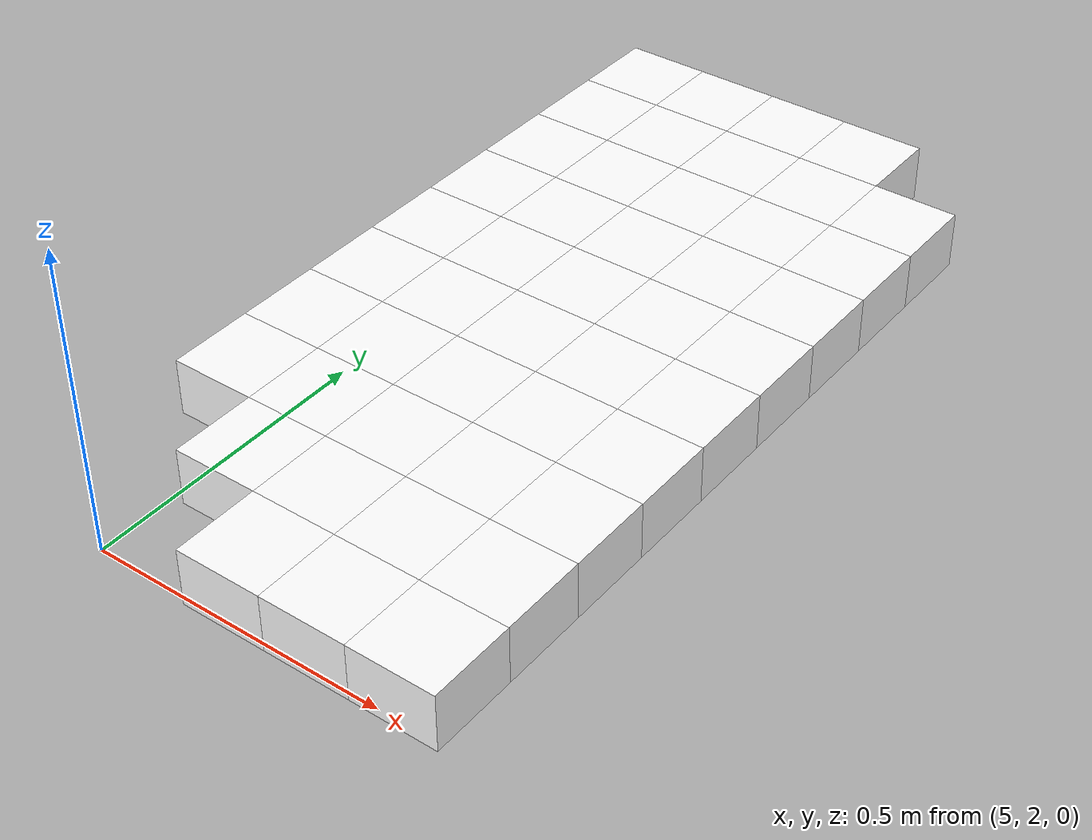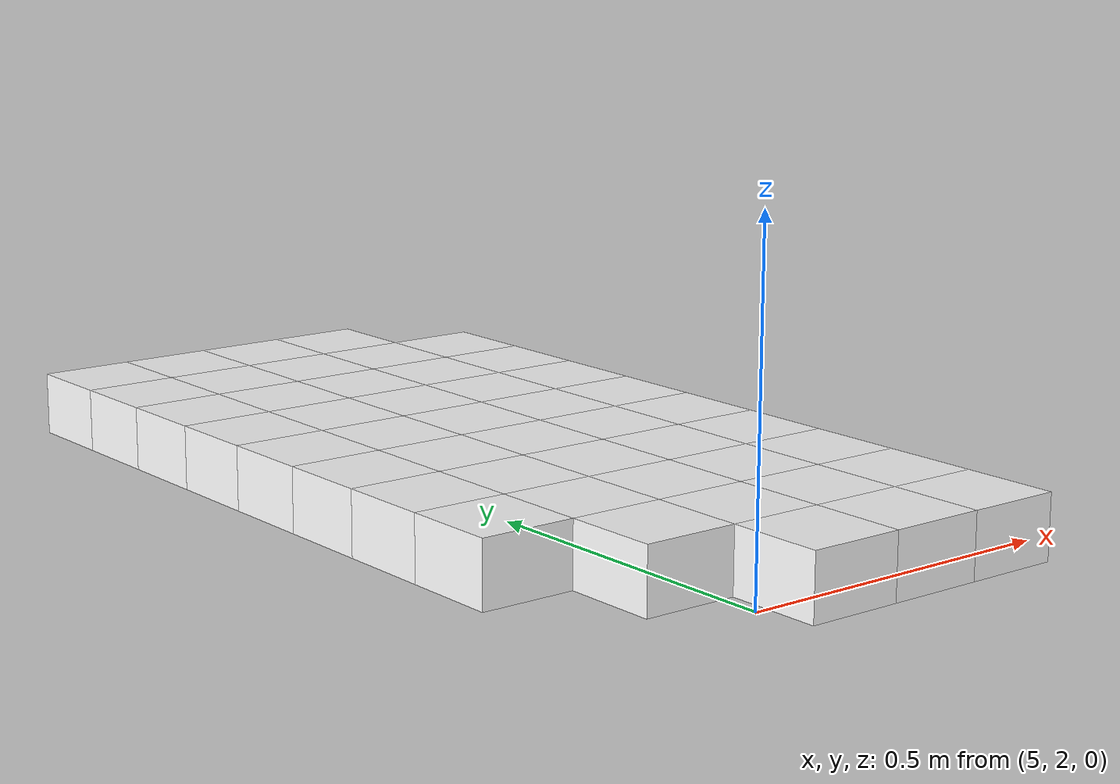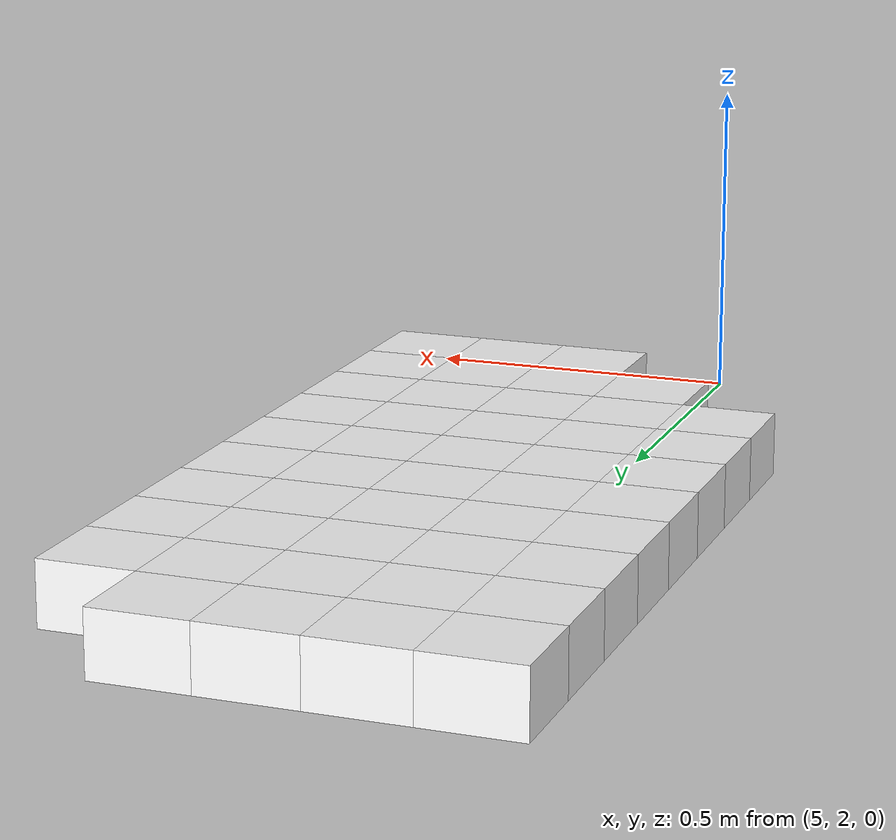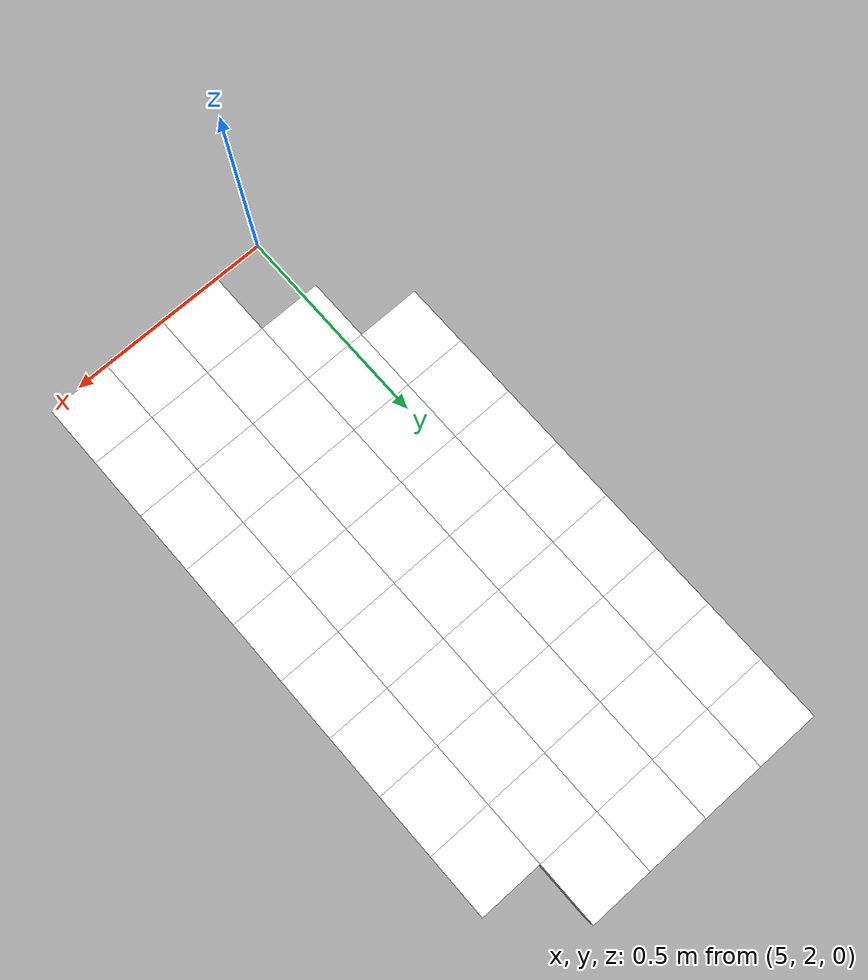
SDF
<sdf version="1.7">
 <world name="default">
  <include><uri>model://sun</uri></include>
  <model name="static_environment">
   <static>true</static>
   <link name="region_1008">
    <pose>5.200000000000003 2.0999999999999996 0.0 0.0 0.0 0.0</pose>
    <collision name="region_1008_collision">
     <geometry><box><size>0.15 0.15 0.1</size></box></geometry>
     <surface><friction><ode><mu>1.0</mu><mu2>1.0</mu2></ode></friction></surface>
    </collision>
    <visual name="region_1008_visual">
     <geometry><box><size>0.15 0.15 0.1</size></box></geometry>
     <material><ambient>1.0 1.0 1.0 1.0</ambient><diffuse>1.0 1.0 1.0 1.0</diffuse></material>
    </visual>
   </link>
   <link name="region_1009">
    <pose>5.350000000000003 2.0999999999999996 0.0 0.0 0.0 0.0</pose>
    <collision name="region_1009_collision">
     <geometry><box><size>0.15 0.15 0.1</size></box></geometry>
     <surface><friction><ode><mu>1.0</mu><mu2>1.0</mu2></ode></friction></surface>
    </collision>
    <visual name="region_1009_visual">
     <geometry><box><size>0.15 0.15 0.1</size></box></geometry>
     <material><ambient>1.0 1.0 1.0 1.0</ambient><diffuse>1.0 1.0 1.0 1.0</diffuse></material>
    </visual>
   </link>
   <link name="region_1010">
    <pose>5.5000000000000036 2.0999999999999996 0.0 0.0 0.0 0.0</pose>
    <collision name="region_1010_collision">
     <geometry><box><size>0.15 0.15 0.1</size></box></geometry>
     <surface><friction><ode><mu>1.0</mu><mu2>1.0</mu2></ode></friction></surface>
    </collision>
    <visual name="region_1010_visual">
     <geometry><box><size>0.15 0.15 0.1</size></box></geometry>
     <material><ambient>1.0 1.0 1.0 1.0</ambient><diffuse>1.0 1.0 1.0 1.0</diffuse></material>
    </visual>
   </link>
   <link name="region_1027">
    <pose>5.0500000000000025 2.2499999999999996 0.0 0.0 0.0 0.0</pose>
    <collision name="region_1027_collision">
     <geometry><box><size>0.15 0.15 0.1</size></box></geometry>
     <surface><friction><ode><mu>1.0</mu><mu2>1.0</mu2></ode></friction></surface>
    </collision>
    <visual name="region_1027_visual">
     <geometry><box><size>0.15 0.15 0.1</size></box></geometry>
     <material><ambient>1.0 1.0 1.0 1.0</ambient><diffuse>1.0 1.0 1.0 1.0</diffuse></material>
    </visual>
   </link>
   <link name="region_1028">
    <pose>5.200000000000003 2.2499999999999996 0.0 0.0 0.0 0.0</pose>
    <collision name="region_1028_collision">
     <geometry><box><size>0.15 0.15 0.1</size></box></geometry>
     <surface><friction><ode><mu>1.0</mu><mu2>1.0</mu2></ode></friction></surface>
    </collision>
    <visual name="region_1028_visual">
     <geometry><box><size>0.15 0.15 0.1</size></box></geometry>
     <material><ambient>1.0 1.0 1.0 1.0</ambient><diffuse>1.0 1.0 1.0 1.0</diffuse></material>
    </visual>
   </link>
   <link name="region_1029">
    <pose>5.350000000000003 2.2499999999999996 0.0 0.0 0.0 0.0</pose>
    <collision name="region_1029_collision">
     <geometry><box><size>0.15 0.15 0.1</size></box></geometry>
     <surface><friction><ode><mu>1.0</mu><mu2>1.0</mu2></ode></friction></surface>
    </collision>
    <visual name="region_1029_visual">
     <geometry><box><size>0.15 0.15 0.1</size></box></geometry>
     <material><ambient>1.0 1.0 1.0 1.0</ambient><diffuse>1.0 1.0 1.0 1.0</diffuse></material>
    </visual>
   </link>
   <link name="region_1030">
    <pose>5.5000000000000036 2.2499999999999996 0.0 0.0 0.0 0.0</pose>
    <collision name="region_1030_collision">
     <geometry><box><size>0.15 0.15 0.1</size></box></geometry>
     <surface><friction><ode><mu>1.0</mu><mu2>1.0</mu2></ode></friction></surface>
    </collision>
    <visual name="region_1030_visual">
     <geometry><box><size>0.15 0.15 0.1</size></box></geometry>
     <material><ambient>1.0 1.0 1.0 1.0</ambient><diffuse>1.0 1.0 1.0 1.0</diffuse></material>
    </visual>
   </link>
   <link name="region_1046">
    <pose>4.900000000000002 2.3999999999999995 0.0 0.0 0.0 0.0</pose>
    <collision name="region_1046_collision">
     <geometry><box><size>0.15 0.15 0.1</size></box></geometry>
     <surface><friction><ode><mu>1.0</mu><mu2>1.0</mu2></ode></friction></surface>
    </collision>
    <visual name="region_1046_visual">
     <geometry><box><size>0.15 0.15 0.1</size></box></geometry>
     <material><ambient>1.0 1.0 1.0 1.0</ambient><diffuse>1.0 1.0 1.0 1.0</diffuse></material>
    </visual>
   </link>
   <link name="region_1047">
    <pose>5.0500000000000025 2.3999999999999995 0.0 0.0 0.0 0.0</pose>
    <collision name="region_1047_collision">
     <geometry><box><size>0.15 0.15 0.1</size></box></geometry>
     <surface><friction><ode><mu>1.0</mu><mu2>1.0</mu2></ode></friction></surface>
    </collision>
    <visual name="region_1047_visual">
     <geometry><box><size>0.15 0.15 0.1</size></box></geometry>
     <material><ambient>1.0 1.0 1.0 1.0</ambient><diffuse>1.0 1.0 1.0 1.0</diffuse></material>
    </visual>
   </link>
   <link name="region_1048">
    <pose>5.200000000000003 2.3999999999999995 0.0 0.0 0.0 0.0</pose>
    <collision name="region_1048_collision">
     <geometry><box><size>0.15 0.15 0.1</size></box></geometry>
     <surface><friction><ode><mu>1.0</mu><mu2>1.0</mu2></ode></friction></surface>
    </collision>
    <visual name="region_1048_visual">
     <geometry><box><size>0.15 0.15 0.1</size></box></geometry>
     <material><ambient>1.0 1.0 1.0 1.0</ambient><diffuse>1.0 1.0 1.0 1.0</diffuse></material>
    </visual>
   </link>
   <link name="region_1049">
    <pose>5.350000000000003 2.3999999999999995 0.0 0.0 0.0 0.0</pose>
    <collision name="region_1049_collision">
     <geometry><box><size>0.15 0.15 0.1</size></box></geometry>
     <surface><friction><ode><mu>1.0</mu><mu2>1.0</mu2></ode></friction></surface>
    </collision>
    <visual name="region_1049_visual">
     <geometry><box><size>0.15 0.15 0.1</size></box></geometry>
     <material><ambient>1.0 1.0 1.0 1.0</ambient><diffuse>1.0 1.0 1.0 1.0</diffuse></material>
    </visual>
   </link>
   <link name="region_1050">
    <pose>5.5000000000000036 2.3999999999999995 0.0 0.0 0.0 0.0</pose>
    <collision name="region_1050_collision">
     <geometry><box><size>0.15 0.15 0.1</size></box></geometry>
     <surface><friction><ode><mu>1.0</mu><mu2>1.0</mu2></ode></friction></surface>
    </collision>
    <visual name="region_1050_visual">
     <geometry><box><size>0.15 0.15 0.1</size></box></geometry>
     <material><ambient>1.0 1.0 1.0 1.0</ambient><diffuse>1.0 1.0 1.0 1.0</diffuse></material>
    </visual>
   </link>
   <link name="region_1066">
    <pose>4.900000000000002 2.5499999999999994 0.0 0.0 0.0 0.0</pose>
    <collision name="region_1066_collision">
     <geometry><box><size>0.15 0.15 0.1</size></box></geometry>
     <surface><friction><ode><mu>1.0</mu><mu2>1.0</mu2></ode></friction></surface>
    </collision>
    <visual name="region_1066_visual">
     <geometry><box><size>0.15 0.15 0.1</size></box></geometry>
     <material><ambient>1.0 1.0 1.0 1.0</ambient><diffuse>1.0 1.0 1.0 1.0</diffuse></material>
    </visual>
   </link>
   <link name="region_1067">
    <pose>5.0500000000000025 2.5499999999999994 0.0 0.0 0.0 0.0</pose>
    <collision name="region_1067_collision">
     <geometry><box><size>0.15 0.15 0.1</size></box></geometry>
     <surface><friction><ode><mu>1.0</mu><mu2>1.0</mu2></ode></friction></surface>
    </collision>
    <visual name="region_1067_visual">
     <geometry><box><size>0.15 0.15 0.1</size></box></geometry>
     <material><ambient>1.0 1.0 1.0 1.0</ambient><diffuse>1.0 1.0 1.0 1.0</diffuse></material>
    </visual>
   </link>
   <link name="region_1068">
    <pose>5.200000000000003 2.5499999999999994 0.0 0.0 0.0 0.0</pose>
    <collision name="region_1068_collision">
     <geometry><box><size>0.15 0.15 0.1</size></box></geometry>
     <surface><friction><ode><mu>1.0</mu><mu2>1.0</mu2></ode></friction></surface>
    </collision>
    <visual name="region_1068_visual">
     <geometry><box><size>0.15 0.15 0.1</size></box></geometry>
     <material><ambient>1.0 1.0 1.0 1.0</ambient><diffuse>1.0 1.0 1.0 1.0</diffuse></material>
    </visual>
   </link>
   <link name="region_1069">
    <pose>5.350000000000003 2.5499999999999994 0.0 0.0 0.0 0.0</pose>
    <collision name="region_1069_collision">
     <geometry><box><size>0.15 0.15 0.1</size></box></geometry>
     <surface><friction><ode><mu>1.0</mu><mu2>1.0</mu2></ode></friction></surface>
    </collision>
    <visual name="region_1069_visual">
     <geometry><box><size>0.15 0.15 0.1</size></box></geometry>
     <material><ambient>1.0 1.0 1.0 1.0</ambient><diffuse>1.0 1.0 1.0 1.0</diffuse></material>
    </visual>
   </link>
   <link name="region_1070">
    <pose>5.5000000000000036 2.5499999999999994 0.0 0.0 0.0 0.0</pose>
    <collision name="region_1070_collision">
     <geometry><box><size>0.15 0.15 0.1</size></box></geometry>
     <surface><friction><ode><mu>1.0</mu><mu2>1.0</mu2></ode></friction></surface>
    </collision>
    <visual name="region_1070_visual">
     <geometry><box><size>0.15 0.15 0.1</size></box></geometry>
     <material><ambient>1.0 1.0 1.0 1.0</ambient><diffuse>1.0 1.0 1.0 1.0</diffuse></material>
    </visual>
   </link>
   <link name="region_1086">
    <pose>4.900000000000002 2.6999999999999997 0.0 0.0 0.0 0.0</pose>
    <collision name="region_1086_collision">
     <geometry><box><size>0.15 0.15 0.1</size></box></geometry>
     <surface><friction><ode><mu>1.0</mu><mu2>1.0</mu2></ode></friction></surface>
    </collision>
    <visual name="region_1086_visual">
     <geometry><box><size>0.15 0.15 0.1</size></box></geometry>
     <material><ambient>1.0 1.0 1.0 1.0</ambient><diffuse>1.0 1.0 1.0 1.0</diffuse></material>
    </visual>
   </link>
   <link name="region_1087">
    <pose>5.0500000000000025 2.6999999999999997 0.0 0.0 0.0 0.0</pose>
    <collision name="region_1087_collision">
     <geometry><box><size>0.15 0.15 0.1</size></box></geometry>
     <surface><friction><ode><mu>1.0</mu><mu2>1.0</mu2></ode></friction></surface>
    </collision>
    <visual name="region_1087_visual">
     <geometry><box><size>0.15 0.15 0.1</size></box></geometry>
     <material><ambient>1.0 1.0 1.0 1.0</ambient><diffuse>1.0 1.0 1.0 1.0</diffuse></material>
    </visual>
   </link>
   <link name="region_1088">
    <pose>5.200000000000003 2.6999999999999997 0.0 0.0 0.0 0.0</pose>
    <collision name="region_1088_collision">
     <geometry><box><size>0.15 0.15 0.1</size></box></geometry>
     <surface><friction><ode><mu>1.0</mu><mu2>1.0</mu2></ode></friction></surface>
    </collision>
    <visual name="region_1088_visual">
     <geometry><box><size>0.15 0.15 0.1</size></box></geometry>
     <material><ambient>1.0 1.0 1.0 1.0</ambient><diffuse>1.0 1.0 1.0 1.0</diffuse></material>
    </visual>
   </link>
   <link name="region_1089">
    <pose>5.350000000000003 2.6999999999999997 0.0 0.0 0.0 0.0</pose>
    <collision name="region_1089_collision">
     <geometry><box><size>0.15 0.15 0.1</size></box></geometry>
     <surface><friction><ode><mu>1.0</mu><mu2>1.0</mu2></ode></friction></surface>
    </collision>
    <visual name="region_1089_visual">
     <geometry><box><size>0.15 0.15 0.1</size></box></geometry>
     <material><ambient>1.0 1.0 1.0 1.0</ambient><diffuse>1.0 1.0 1.0 1.0</diffuse></material>
    </visual>
   </link>
   <link name="region_1090">
    <pose>5.5000000000000036 2.6999999999999997 0.0 0.0 0.0 0.0</pose>
    <collision name="region_1090_collision">
     <geometry><box><size>0.15 0.15 0.1</size></box></geometry>
     <surface><friction><ode><mu>1.0</mu><mu2>1.0</mu2></ode></friction></surface>
    </collision>
    <visual name="region_1090_visual">
     <geometry><box><size>0.15 0.15 0.1</size></box></geometry>
     <material><ambient>1.0 1.0 1.0 1.0</ambient><diffuse>1.0 1.0 1.0 1.0</diffuse></material>
    </visual>
   </link>
   <link name="region_1106">
    <pose>4.900000000000002 2.8499999999999996 0.0 0.0 0.0 0.0</pose>
    <collision name="region_1106_collision">
     <geometry><box><size>0.15 0.15 0.1</size></box></geometry>
     <surface><friction><ode><mu>1.0</mu><mu2>1.0</mu2></ode></friction></surface>
    </collision>
    <visual name="region_1106_visual">
     <geometry><box><size>0.15 0.15 0.1</size></box></geometry>
     <material><ambient>1.0 1.0 1.0 1.0</ambient><diffuse>1.0 1.0 1.0 1.0</diffuse></material>
    </visual>
   </link>
   <link name="region_1107">
    <pose>5.0500000000000025 2.8499999999999996 0.0 0.0 0.0 0.0</pose>
    <collision name="region_1107_collision">
     <geometry><box><size>0.15 0.15 0.1</size></box></geometry>
     <surface><friction><ode><mu>1.0</mu><mu2>1.0</mu2></ode></friction></surface>
    </collision>
    <visual name="region_1107_visual">
     <geometry><box><size>0.15 0.15 0.1</size></box></geometry>
     <material><ambient>1.0 1.0 1.0 1.0</ambient><diffuse>1.0 1.0 1.0 1.0</diffuse></material>
    </visual>
   </link>
   <link name="region_1108">
    <pose>5.200000000000003 2.8499999999999996 0.0 0.0 0.0 0.0</pose>
    <collision name="region_1108_collision">
     <geometry><box><size>0.15 0.15 0.1</size></box></geometry>
     <surface><friction><ode><mu>1.0</mu><mu2>1.0</mu2></ode></friction></surface>
    </collision>
    <visual name="region_1108_visual">
     <geometry><box><size>0.15 0.15 0.1</size></box></geometry>
     <material><ambient>1.0 1.0 1.0 1.0</ambient><diffuse>1.0 1.0 1.0 1.0</diffuse></material>
    </visual>
   </link>
   <link name="region_1109">
    <pose>5.350000000000003 2.8499999999999996 0.0 0.0 0.0 0.0</pose>
    <collision name="region_1109_collision">
     <geometry><box><size>0.15 0.15 0.1</size></box></geometry>
     <surface><friction><ode><mu>1.0</mu><mu2>1.0</mu2></ode></friction></surface>
    </collision>
    <visual name="region_1109_visual">
     <geometry><box><size>0.15 0.15 0.1</size></box></geometry>
     <material><ambient>1.0 1.0 1.0 1.0</ambient><diffuse>1.0 1.0 1.0 1.0</diffuse></material>
    </visual>
   </link>
   <link name="region_1110">
    <pose>5.5000000000000036 2.8499999999999996 0.0 0.0 0.0 0.0</pose>
    <collision name="region_1110_collision">
     <geometry><box><size>0.15 0.15 0.1</size></box></geometry>
     <surface><friction><ode><mu>1.0</mu><mu2>1.0</mu2></ode></friction></surface>
    </collision>
    <visual name="region_1110_visual">
     <geometry><box><size>0.15 0.15 0.1</size></box></geometry>
     <material><ambient>1.0 1.0 1.0 1.0</ambient><diffuse>1.0 1.0 1.0 1.0</diffuse></material>
    </visual>
   </link>
   <link name="region_1126">
    <pose>4.900000000000002 2.9999999999999996 0.0 0.0 0.0 0.0</pose>
    <collision name="region_1126_collision">
     <geometry><box><size>0.15 0.15 0.1</size></box></geometry>
     <surface><friction><ode><mu>1.0</mu><mu2>1.0</mu2></ode></friction></surface>
    </collision>
    <visual name="region_1126_visual">
     <geometry><box><size>0.15 0.15 0.1</size></box></geometry>
     <material><ambient>1.0 1.0 1.0 1.0</ambient><diffuse>1.0 1.0 1.0 1.0</diffuse></material>
    </visual>
   </link>
   <link name="region_1127">
    <pose>5.0500000000000025 2.9999999999999996 0.0 0.0 0.0 0.0</pose>
    <collision name="region_1127_collision">
     <geometry><box><size>0.15 0.15 0.1</size></box></geometry>
     <surface><friction><ode><mu>1.0</mu><mu2>1.0</mu2></ode></friction></surface>
    </collision>
    <visual name="region_1127_visual">
     <geometry><box><size>0.15 0.15 0.1</size></box></geometry>
     <material><ambient>1.0 1.0 1.0 1.0</ambient><diffuse>1.0 1.0 1.0 1.0</diffuse></material>
    </visual>
   </link>
   <link name="region_1128">
    <pose>5.200000000000003 2.9999999999999996 0.0 0.0 0.0 0.0</pose>
    <collision name="region_1128_collision">
     <geometry><box><size>0.15 0.15 0.1</size></box></geometry>
     <surface><friction><ode><mu>1.0</mu><mu2>1.0</mu2></ode></friction></surface>
    </collision>
    <visual name="region_1128_visual">
     <geometry><box><size>0.15 0.15 0.1</size></box></geometry>
     <material><ambient>1.0 1.0 1.0 1.0</ambient><diffuse>1.0 1.0 1.0 1.0</diffuse></material>
    </visual>
   </link>
   <link name="region_1129">
    <pose>5.350000000000003 2.9999999999999996 0.0 0.0 0.0 0.0</pose>
    <collision name="region_1129_collision">
     <geometry><box><size>0.15 0.15 0.1</size></box></geometry>
     <surface><friction><ode><mu>1.0</mu><mu2>1.0</mu2></ode></friction></surface>
    </collision>
    <visual name="region_1129_visual">
     <geometry><box><size>0.15 0.15 0.1</size></box></geometry>
     <material><ambient>1.0 1.0 1.0 1.0</ambient><diffuse>1.0 1.0 1.0 1.0</diffuse></material>
    </visual>
   </link>
   <link name="region_1130">
    <pose>5.5000000000000036 2.9999999999999996 0.0 0.0 0.0 0.0</pose>
    <collision name="region_1130_collision">
     <geometry><box><size>0.15 0.15 0.1</size></box></geometry>
     <surface><friction><ode><mu>1.0</mu><mu2>1.0</mu2></ode></friction></surface>
    </collision>
    <visual name="region_1130_visual">
     <geometry><box><size>0.15 0.15 0.1</size></box></geometry>
     <material><ambient>1.0 1.0 1.0 1.0</ambient><diffuse>1.0 1.0 1.0 1.0</diffuse></material>
    </visual>
   </link>
   <link name="region_1146">
    <pose>4.900000000000002 3.1499999999999995 0.0 0.0 0.0 0.0</pose>
    <collision name="region_1146_collision">
     <geometry><box><size>0.15 0.15 0.1</size></box></geometry>
     <surface><friction><ode><mu>1.0</mu><mu2>1.0</mu2></ode></friction></surface>
    </collision>
    <visual name="region_1146_visual">
     <geometry><box><size>0.15 0.15 0.1</size></box></geometry>
     <material><ambient>1.0 1.0 1.0 1.0</ambient><diffuse>1.0 1.0 1.0 1.0</diffuse></material>
    </visual>
   </link>
   <link name="region_1147">
    <pose>5.0500000000000025 3.1499999999999995 0.0 0.0 0.0 0.0</pose>
    <collision name="region_1147_collision">
     <geometry><box><size>0.15 0.15 0.1</size></box></geometry>
     <surface><friction><ode><mu>1.0</mu><mu2>1.0</mu2></ode></friction></surface>
    </collision>
    <visual name="region_1147_visual">
     <geometry><box><size>0.15 0.15 0.1</size></box></geometry>
     <material><ambient>1.0 1.0 1.0 1.0</ambient><diffuse>1.0 1.0 1.0 1.0</diffuse></material>
    </visual>
   </link>
   <link name="region_1148">
    <pose>5.200000000000003 3.1499999999999995 0.0 0.0 0.0 0.0</pose>
    <collision name="region_1148_collision">
     <geometry><box><size>0.15 0.15 0.1</size></box></geometry>
     <surface><friction><ode><mu>1.0</mu><mu2>1.0</mu2></ode></friction></surface>
    </collision>
    <visual name="region_1148_visual">
     <geometry><box><size>0.15 0.15 0.1</size></box></geometry>
     <material><ambient>1.0 1.0 1.0 1.0</ambient><diffuse>1.0 1.0 1.0 1.0</diffuse></material>
    </visual>
   </link>
   <link name="region_1149">
    <pose>5.350000000000003 3.1499999999999995 0.0 0.0 0.0 0.0</pose>
    <collision name="region_1149_collision">
     <geometry><box><size>0.15 0.15 0.1</size></box></geometry>
     <surface><friction><ode><mu>1.0</mu><mu2>1.0</mu2></ode></friction></surface>
    </collision>
    <visual name="region_1149_visual">
     <geometry><box><size>0.15 0.15 0.1</size></box></geometry>
     <material><ambient>1.0 1.0 1.0 1.0</ambient><diffuse>1.0 1.0 1.0 1.0</diffuse></material>
    </visual>
   </link>
   <link name="region_1150">
    <pose>5.5000000000000036 3.1499999999999995 0.0 0.0 0.0 0.0</pose>
    <collision name="region_1150_collision">
     <geometry><box><size>0.15 0.15 0.1</size></box></geometry>
     <surface><friction><ode><mu>1.0</mu><mu2>1.0</mu2></ode></friction></surface>
    </collision>
    <visual name="region_1150_visual">
     <geometry><box><size>0.15 0.15 0.1</size></box></geometry>
     <material><ambient>1.0 1.0 1.0 1.0</ambient><diffuse>1.0 1.0 1.0 1.0</diffuse></material>
    </visual>
   </link>
   <link name="region_1166">
    <pose>4.900000000000002 3.2999999999999994 0.0 0.0 0.0 0.0</pose>
    <collision name="region_1166_collision">
     <geometry><box><size>0.15 0.15 0.1</size></box></geometry>
     <surface><friction><ode><mu>1.0</mu><mu2>1.0</mu2></ode></friction></surface>
    </collision>
    <visual name="region_1166_visual">
     <geometry><box><size>0.15 0.15 0.1</size></box></geometry>
     <material><ambient>1.0 1.0 1.0 1.0</ambient><diffuse>1.0 1.0 1.0 1.0</diffuse></material>
    </visual>
   </link>
   <link name="region_1167">
    <pose>5.0500000000000025 3.2999999999999994 0.0 0.0 0.0 0.0</pose>
    <collision name="region_1167_collision">
     <geometry><box><size>0.15 0.15 0.1</size></box></geometry>
     <surface><friction><ode><mu>1.0</mu><mu2>1.0</mu2></ode></friction></surface>
    </collision>
    <visual name="region_1167_visual">
     <geometry><box><size>0.15 0.15 0.1</size></box></geometry>
     <material><ambient>1.0 1.0 1.0 1.0</ambient><diffuse>1.0 1.0 1.0 1.0</diffuse></material>
    </visual>
   </link>
   <link name="region_1168">
    <pose>5.200000000000003 3.2999999999999994 0.0 0.0 0.0 0.0</pose>
    <collision name="region_1168_collision">
     <geometry><box><size>0.15 0.15 0.1</size></box></geometry>
     <surface><friction><ode><mu>1.0</mu><mu2>1.0</mu2></ode></friction></surface>
    </collision>
    <visual name="region_1168_visual">
     <geometry><box><size>0.15 0.15 0.1</size></box></geometry>
     <material><ambient>1.0 1.0 1.0 1.0</ambient><diffuse>1.0 1.0 1.0 1.0</diffuse></material>
    </visual>
   </link>
   <link name="region_1169">
    <pose>5.350000000000003 3.2999999999999994 0.0 0.0 0.0 0.0</pose>
    <collision name="region_1169_collision">
     <geometry><box><size>0.15 0.15 0.1</size></box></geometry>
     <surface><friction><ode><mu>1.0</mu><mu2>1.0</mu2></ode></friction></surface>
    </collision>
    <visual name="region_1169_visual">
     <geometry><box><size>0.15 0.15 0.1</size></box></geometry>
     <material><ambient>1.0 1.0 1.0 1.0</ambient><diffuse>1.0 1.0 1.0 1.0</diffuse></material>
    </visual>
   </link>
   <link name="region_1170">
    <pose>5.5000000000000036 3.2999999999999994 0.0 0.0 0.0 0.0</pose>
    <collision name="region_1170_collision">
     <geometry><box><size>0.15 0.15 0.1</size></box></geometry>
     <surface><friction><ode><mu>1.0</mu><mu2>1.0</mu2></ode></friction></surface>
    </collision>
    <visual name="region_1170_visual">
     <geometry><box><size>0.15 0.15 0.1</size></box></geometry>
     <material><ambient>1.0 1.0 1.0 1.0</ambient><diffuse>1.0 1.0 1.0 1.0</diffuse></material>
    </visual>
   </link>
   <link name="region_1186">
    <pose>4.900000000000002 3.4499999999999993 0.0 0.0 0.0 0.0</pose>
    <collision name="region_1186_collision">
     <geometry><box><size>0.15 0.15 0.1</size></box></geometry>
     <surface><friction><ode><mu>1.0</mu><mu2>1.0</mu2></ode></friction></surface>
    </collision>
    <visual name="region_1186_visual">
     <geometry><box><size>0.15 0.15 0.1</size></box></geometry>
     <material><ambient>1.0 1.0 1.0 1.0</ambient><diffuse>1.0 1.0 1.0 1.0</diffuse></material>
    </visual>
   </link>
   <link name="region_1187">
    <pose>5.0500000000000025 3.4499999999999993 0.0 0.0 0.0 0.0</pose>
    <collision name="region_1187_collision">
     <geometry><box><size>0.15 0.15 0.1</size></box></geometry>
     <surface><friction><ode><mu>1.0</mu><mu2>1.0</mu2></ode></friction></surface>
    </collision>
    <visual name="region_1187_visual">
     <geometry><box><size>0.15 0.15 0.1</size></box></geometry>
     <material><ambient>1.0 1.0 1.0 1.0</ambient><diffuse>1.0 1.0 1.0 1.0</diffuse></material>
    </visual>
   </link>
   <link name="region_1188">
    <pose>5.200000000000003 3.4499999999999993 0.0 0.0 0.0 0.0</pose>
    <collision name="region_1188_collision">
     <geometry><box><size>0.15 0.15 0.1</size></box></geometry>
     <surface><friction><ode><mu>1.0</mu><mu2>1.0</mu2></ode></friction></surface>
    </collision>
    <visual name="region_1188_visual">
     <geometry><box><size>0.15 0.15 0.1</size></box></geometry>
     <material><ambient>1.0 1.0 1.0 1.0</ambient><diffuse>1.0 1.0 1.0 1.0</diffuse></material>
    </visual>
   </link>
   <link name="region_1189">
    <pose>5.350000000000003 3.4499999999999993 0.0 0.0 0.0 0.0</pose>
    <collision name="region_1189_collision">
     <geometry><box><size>0.15 0.15 0.1</size></box></geometry>
     <surface><friction><ode><mu>1.0</mu><mu2>1.0</mu2></ode></friction></surface>
    </collision>
    <visual name="region_1189_visual">
     <geometry><box><size>0.15 0.15 0.1</size></box></geometry>
     <material><ambient>1.0 1.0 1.0 1.0</ambient><diffuse>1.0 1.0 1.0 1.0</diffuse></material>
    </visual>
   </link>
  </model>
 </world>
</sdf>
